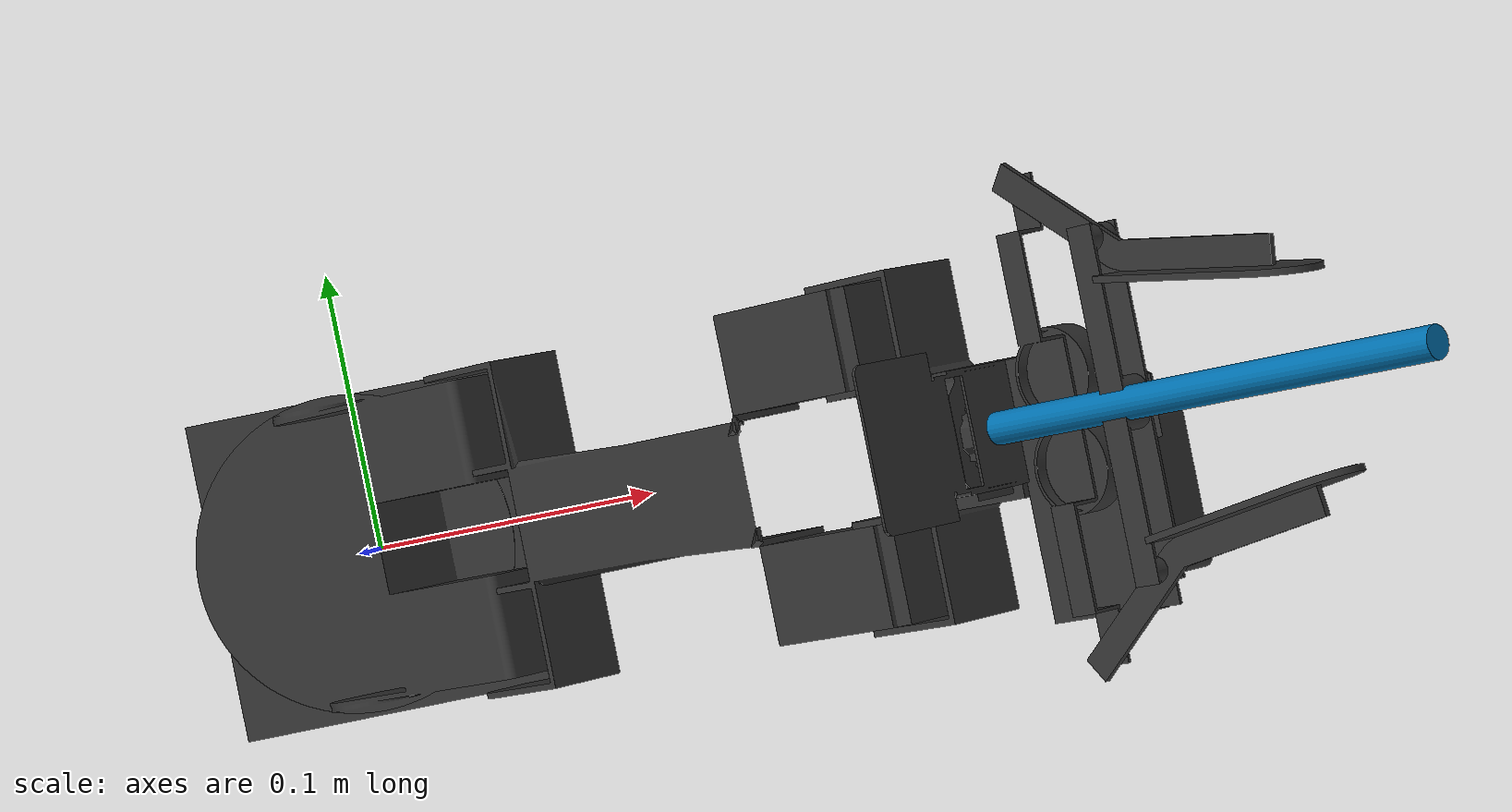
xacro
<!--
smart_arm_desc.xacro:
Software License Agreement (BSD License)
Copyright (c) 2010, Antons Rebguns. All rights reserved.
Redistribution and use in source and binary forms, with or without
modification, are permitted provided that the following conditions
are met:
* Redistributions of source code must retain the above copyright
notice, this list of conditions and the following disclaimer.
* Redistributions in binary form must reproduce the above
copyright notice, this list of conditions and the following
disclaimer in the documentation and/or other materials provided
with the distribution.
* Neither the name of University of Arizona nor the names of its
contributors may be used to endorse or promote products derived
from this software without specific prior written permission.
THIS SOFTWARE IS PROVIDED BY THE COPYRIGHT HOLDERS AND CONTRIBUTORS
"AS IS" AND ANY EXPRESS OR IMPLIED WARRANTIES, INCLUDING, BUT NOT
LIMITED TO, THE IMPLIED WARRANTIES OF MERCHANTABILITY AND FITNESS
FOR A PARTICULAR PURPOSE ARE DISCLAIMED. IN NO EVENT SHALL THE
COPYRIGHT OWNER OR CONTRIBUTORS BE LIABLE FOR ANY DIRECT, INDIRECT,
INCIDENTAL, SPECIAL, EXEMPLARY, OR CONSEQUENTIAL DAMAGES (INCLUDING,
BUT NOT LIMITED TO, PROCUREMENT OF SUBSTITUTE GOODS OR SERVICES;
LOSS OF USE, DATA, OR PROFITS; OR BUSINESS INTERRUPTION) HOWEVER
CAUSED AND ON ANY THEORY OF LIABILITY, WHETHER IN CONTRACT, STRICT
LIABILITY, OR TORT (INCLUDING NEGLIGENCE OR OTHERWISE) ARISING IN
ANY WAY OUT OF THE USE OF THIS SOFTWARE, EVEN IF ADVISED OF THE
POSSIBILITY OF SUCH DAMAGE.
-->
<?xml version="1.0"?>

<robot name="smart_arm"
    xmlns:sensor="http://playerstage.sourceforge.net/gazebo/xmlschema/#sensor"
    xmlns:controller="http://playerstage.sourceforge.net/gazebo/xmlschema/#controller"
    xmlns:interface="http://playerstage.sourceforge.net/gazebo/xmlschema/#interface">

    <!-- Included URDF Files -->
    <include filename="$(find smart_arm_desc)/smart_arm_desc.xacro" />
    <include filename="$(find smart_arm_desc)/effector_desc.xacro" />

    <link name="world_link">
    </link>

    <smart_arm parent="world_link">
        <origin xyz="0 0 0" rpy="0 0 0" />
    </smart_arm>
    <end_effector parent="arm_wrist_roll_link"/>
</robot>

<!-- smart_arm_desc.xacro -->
<robot
	name="smart_arm"
    xmlns:sensor="http://playerstage.sourceforge.net/gazebo/xmlschema/#sensor"
    xmlns:controller="http://playerstage.sourceforge.net/gazebo/xmlschema/#controller"
    xmlns:interface="http://playerstage.sourceforge.net/gazebo/xmlschema/#interface">

    <macro name="smart_arm" params="parent *origin">
        <!-- ****** JOINT DEFINITIONS ****** -->

        <!-- Arm's base joint -->
        <joint name="arm_base_joint" type="fixed">
            <insert_block name="origin" />
            <parent link="${parent}"/>
            <child link="arm_base_link"/>
        </joint>

        <!-- Shoulder pan joint -->
        <joint name="shoulder_pan_joint" type="revolute" >
            <origin xyz="-0.0075 0 0.025" rpy="0 0 0" />
            <parent link="arm_base_link" />
            <child link="arm_shoulder_pan_link"/>

            <axis xyz="0 0 1"/>
            <limit  lower="-1.22" upper="1.22" effort="300" velocity="1.17" />
            <safety_controller k_position="100" k_velocity="15.0" soft_lower_limit="${-1.22+0.1}" soft_upper_limit="${1.22-0.1}" />
            <dynamics damping="50" friction="1"/>
        </joint>

	<!-- Shoulder tilt joint -->
        <joint name="shoulder_pitch_joint" type="revolute">
            <origin xyz="${0.077/1.414} 0 ${0.040 + 0.077/1.414}" rpy="0 -0.7854 0" />
            <parent link="arm_shoulder_pan_link"/>
            <child link="arm_shoulder_pitch_link" />

            <axis xyz="0 -1 0"/>
            <limit  lower="-2.007" upper="2.007" effort="300" velocity="1.17" />
            <safety_controller k_position="100" k_velocity="15.0" soft_lower_limit="-2" soft_upper_limit="2" />
            <dynamics damping="50" friction="1"/>
        </joint>

        <!-- Elbow tilt joint -->
        <joint name="elbow_flex_joint" type="revolute">
            <origin xyz="${0.04 - 0.01 + 0.0015 + 0.105 + 0.055 - 0.01} 0 0" rpy="0 0 0" />
            <parent link="arm_shoulder_pitch_link"/>
            <child link="arm_elbow_flex_link" />

            <axis xyz="0 -1 0"/>
            <!-- From -113 to 108 degrees -->
            <limit  lower="-1.972222" upper="1.8849556" effort="300" velocity="1.17" />
            <dynamics damping="50" friction="1"/>
            <safety_controller k_position="100" k_velocity="15.0" soft_lower_limit="${-1.972222+0.1}" soft_upper_limit="${1.8849556-0.1}" />
        </joint>

        <!-- Wrist rotate joint -->
        <joint name="wrist_roll_joint" type="revolute">
            <origin xyz="${0.08 - 0.01} 0 ${0.05 - 0.0115 - 0.0155}" rpy="0 0 0" />
            <parent link="arm_elbow_flex_link"/>
            <child link="arm_wrist_roll_link" />

            <axis xyz="-1 0 0"/>
            <!-- From -150 to 150 degrees -->
            <limit  lower="-2.6179939" upper="2.6179939" effort="300" velocity="1.17" />
            <dynamics damping="50" friction="1"/>
            <safety_controller k_position="100" k_velocity="15.0" soft_lower_limit="${-2.6179939+0.1}" soft_upper_limit="${2.6179939-0.1}" />
        </joint>

        <!-- Right knuckle joint -->
        <joint name="claw_joint" type="revolute">
            <origin xyz="0.025 ${0.0125-0.014*2} -0.010" rpy="0 0 -1.5708" />
            <parent link="arm_wrist_roll_link"/>
            <child link="arm_right_finger_link" />

            <axis xyz="0 0 1"/>
            <!-- From -15 to 55 degrees -->
            <limit  lower="-0.2618" upper="0.9599" effort="300" velocity="1.17" />
            <dynamics damping="50" friction="1"/>
        </joint>

        <!-- Left knuckle joint -->
        <joint name="left_knuckle_joint" type="revolute">
            <origin xyz="0.025 0.0125 -0.010" rpy="0 0 1.5708" />
            <parent link="arm_wrist_roll_link"/>
            <child link="arm_left_finger_link" />

	    <mimic joint="claw_joint" multiplier="-1"/>
            <axis xyz="0 0 1"/>
            <!-- From -14 to 45 degrees -->
            <limit  lower="-0.9599" upper="0.2618" effort="300" velocity="1.17" />
            <dynamics damping="50" friction="1"/>
        </joint>

	<!-- Right finger joint -->
        <joint name="right_finger_joint" type="revolute">
            <origin xyz="0.058 0 0.007" rpy="0 0 1.5708" />
            <parent link="arm_right_finger_link"/>
            <child link="arm_right_gripper_link" />

            <axis xyz="0 0 1"/>
	    <mimic joint="claw_joint" multiplier="-1"/>
            <!-- From -15 to 55 degrees -->
            <limit  lower="-3.14" upper="3.14" effort="300" velocity="1.17" />
            <dynamics damping="50" friction="1"/>
        </joint>

	<!-- Left finger joint -->
        <joint name="left_finger_joint" type="revolute">
            <origin xyz="0.058 0 0.007" rpy="0 0 -1.5708" />
            <parent link="arm_left_finger_link"/>
            <child link="arm_left_gripper_link" />

            <axis xyz="0 0 1"/>
	    <mimic joint="claw_joint" multiplier="1"/>
            <!-- From -15 to 55 degrees -->
            <limit  lower="-3.14" upper="3.14" effort="300" velocity="1.17" />
            <dynamics damping="50" friction="1"/>
        </joint>

	<!-- Right connector joint -->
        <joint name="right_connector_joint" type="revolute">
            <origin xyz="0.049 -0.005 -0.009" rpy="0 0 -1.5708" />
            <parent link="arm_wrist_roll_link"/>
            <child link="arm_right_connector_link" />

            <axis xyz="0 0 1"/>
	    <mimic joint="claw_joint" multiplier="1"/>
            <!-- From -14 to 45 degrees -->
            <limit  lower="-0.2618" upper="0.9599" effort="300" velocity="1.17" />
            <dynamics damping="50" friction="1"/>
        </joint>

	<!-- Left connector joint -->
        <joint name="left_connector_joint" type="revolute">
            <origin xyz="0.049 0.005 -0.009" rpy="0 0 1.5708" />
            <parent link="arm_wrist_roll_link"/>
            <child link="arm_left_connector_link" />

            <axis xyz="0 0 1"/>
	    <mimic joint="claw_joint" multiplier="-1"/>
            <!-- From -14 to 45 degrees -->
            <limit  lower="-0.9599" upper="0.2618" effort="300" velocity="1.17" />
            <dynamics damping="50" friction="1"/>
        </joint>

        <!-- ****** LINK DEFINITIONS ****** -->

        <link name="arm_base_link">
            <inertial>
                <mass value="0.125" />
                <origin xyz="0 0 0" rpy="0 0 0" />
                <inertia ixx="1.0" ixy="0.0" ixz="0.0"
                         iyy="1.0" iyz="0.0"
                         izz="1.0" />
            </inertial>

            <visual>
                <origin xyz="0.0 0.0 0.0" rpy="0 0 0" />
                <geometry>
                    <mesh filename="package://smart_arm_desc/meshes/arm_base.stl"/>
                </geometry>
                <material name="matArm" />
            </visual>

            <collision>
                <origin xyz="0.0 0.0 0.0" rpy="0 0 0" />
                <geometry>
                    <mesh filename="package://smart_arm_desc/meshes/arm_base.stl"/>
                </geometry>
            </collision>
        </link>

	<link name="arm_shoulder_pan_link">
            <inertial>
                <mass value="0.405" />
                <origin xyz="0 0 0.0" rpy="0 0 0" />
                <inertia ixx="1.0" ixy="0.0" ixz="0.0"
                         iyy="1.0" iyz="0.0"
                         izz="1.0" />
            </inertial>

            <visual>
                <origin xyz="-0.0565 -0.0565 0" rpy="0 0 0" />
                <geometry>
                    <mesh filename="package://smart_arm_desc/meshes/arm_shoulder_pan.stl"/>
                </geometry>
                <material name="matArm" />
            </visual>

            <collision>
                <origin xyz="0.0565 0.0565 0" rpy="0 0 0" />
                <geometry>
                    <mesh filename="package://smart_arm_desc/meshes/arm_shoulder_pan.stl"/>
                </geometry>
            </collision>
        </link>

<link name="arm_shoulder_pitch_link">
            <inertial>
                <mass value="0.18" />
                <origin xyz="0.13999458 0 0.00064711" rpy="0 0 0" />
                <inertia ixx="1.0" ixy="0.0" ixz="0.0"
                         iyy="1.0" iyz="0.0"
                         izz="1.0" />
            </inertial>

            <visual>
                <origin xyz="0.0 0.0 0.0" rpy="0 0 0" />
                <geometry>
                    <mesh filename="package://smart_arm_desc/meshes/arm_shoulder_pitch.stl"/>
                </geometry>
                <material name="matArm" />
            </visual>

            <collision>
                <origin xyz="0.0 0.0 0.0" rpy="0 0 0" />
                <geometry>
                    <mesh filename="package://smart_arm_desc/meshes/arm_shoulder_pitch.stl"/>
                </geometry>
            </collision>
        </link>

        <link name="arm_elbow_flex_link">
            <inertial>
                <mass value="0.12" />
                <origin xyz="0.04463361 0 0.00720194" rpy="0 0 0" />
                <inertia ixx="1.0" ixy="0.0" ixz="0.0"
                         iyy="1.0" iyz="0.0"
                         izz="1.0" />
            </inertial>

            <visual>
                <origin xyz="0.0 0.0 0.0" rpy="0 0 0" />
                <geometry>
                    <mesh filename="package://smart_arm_desc/meshes/arm_elbow_flex.stl"/>
                </geometry>
                <material name="matArm" />
            </visual>

            <collision>
                <origin xyz="0.0 0.0 0.0" rpy="0 0 0" />
                <geometry>
                    <mesh filename="package://smart_arm_desc/meshes/arm_elbow_flex.stl"/>
                </geometry>
            </collision>
        </link>

        <link name="arm_wrist_roll_link">
            <inertial>
                <mass value="0.13" />
                <origin xyz="0.02539960 0 0" rpy="0 0 0" />
                <inertia ixx="1.0" ixy="0.0" ixz="0.0"
                         iyy="1.0" iyz="0.0"
                         izz="1.0" />
            </inertial>

            <visual>
                <origin xyz="0.0 -0.0615 -0.042" rpy="0 0 0" />
                <geometry>
                    <mesh filename="package://smart_arm_desc/meshes/arm_wrist.stl"/>
                </geometry>
                <material name="matArm" />
            </visual>

            <collision>
                <origin xyz="0.0 -0.0615 -0.042" rpy="0 0 0" />
                <geometry>
                    <mesh filename="package://smart_arm_desc/meshes/arm_wrist.stl"/>
                </geometry>
            </collision>
        </link>

        <link name="arm_right_finger_link">
            <inertial>
                <mass value="0.0225" />
                <origin xyz="0.03058625 -0.01804371 -0.00941599" rpy="0 0 0" />
                <inertia ixx="1.0" ixy="0.0" ixz="0.0"
                         iyy="1.0" iyz="0.0"
                         izz="1.0" />
            </inertial>

            <visual>
                <origin xyz="-0.014 -0.014 0.0" rpy="0 0 0" />
                <geometry>
                    <mesh filename="package://smart_arm_desc/meshes/arm_finger_link.stl"/>
                </geometry>
                <material name="matArm" />
            </visual>

            <collision>
                <origin xyz="-0.014 -0.014 0.0" rpy="0 0 0" />
                <geometry>
                    <mesh filename="package://smart_arm_desc/meshes/arm_finger_link.stl"/>
                </geometry>
            </collision>
        </link>

        <link name="arm_left_finger_link">
            <inertial>
                <mass value="0.0225" />
                <origin xyz="-0.014 -0.014 0.0" rpy="0 0 0" />
                <inertia ixx="1.0" ixy="0.0" ixz="0.0"
                         iyy="1.0" iyz="0.0"
                         izz="1.0" />
            </inertial>

            <visual>
                <origin xyz="-0.014 -0.014 0.0" rpy="0 0 0" />
                <geometry>
                    <mesh filename="package://smart_arm_desc/meshes/arm_finger_link.stl"/>
                </geometry>
                <material name="matArm" />
            </visual>

            <collision>
                <origin xyz="-0.014 -0.014 0.0" rpy="0 0 0" />
                <geometry>
                    <mesh filename="package://smart_arm_desc/meshes/arm_finger_link.stl"/>
                </geometry>
            </collision>
        </link>

	<link name="arm_right_gripper_link">
            <inertial>
                <mass value="0.0225" />
                <origin xyz="${-0.01*0.5-0.004*0.866} ${-0.005*0.866-0.004*0.5} -0.014" rpy="0 0 0.139" />
                <inertia ixx="1.0" ixy="0.0" ixz="0.0"
                         iyy="1.0" iyz="0.0"
                         izz="1.0" />
            </inertial>

            <visual>
                <origin xyz="${-0.01*0.5-0.004*0.866} ${-0.005*0.866-0.004*0.5} -0.014" rpy="0 0 0.139" />
                <geometry>
                    <mesh filename="package://smart_arm_desc/meshes/arm_gripper.stl"/>
                </geometry>
                <material name="matArm" />
            </visual>

            <collision>
                <origin xyz="${-0.01*0.5-0.004*0.866} ${-0.005*0.866-0.004*0.5} -0.014" rpy="0 0 0.139" />
                <geometry>
                    <mesh filename="package://smart_arm_desc/meshes/arm_gripper.stl"/>
                </geometry>
            </collision>
        </link>

<link name="arm_left_gripper_link">
            <inertial>
                <mass value="0.0225" />
                <origin xyz="${-0.01*0.5-0.004*0.866} ${0.005*0.866+0.004*0.5} 0.014" rpy="3.1415 -0 0.139" />
                <inertia ixx="1.0" ixy="0.0" ixz="0.0"
                         iyy="1.0" iyz="0.0"
                         izz="1.0" />
            </inertial>

            <visual>
                <origin xyz="${-0.01*0.5-0.004*0.866} ${0.005*0.866+0.004*0.5} 0.014" rpy="3.1415 0 -0.139" />
                <geometry>
                    <mesh filename="package://smart_arm_desc/meshes/arm_gripper.stl"/>
                </geometry>
                <material name="matArm" />
            </visual>

            <collision>
                <origin xyz="${-0.01*0.5-0.004*0.866} ${0.005*0.866+0.004*0.5} 0.014" rpy="3.1415 0 -0.139" />
                <geometry>
                    <mesh filename="package://smart_arm_desc/meshes/arm_gripper.stl"/>
                </geometry>
            </collision>
        </link>

<link name="arm_right_connector_link">
            <inertial>
                <mass value="0.0225" />
                <origin xyz="${-0.01*0.5-0.004*0.866} ${-0.005*0.866-0.004*0.5} 0.014" rpy="0 0 0" />
                <inertia ixx="1.0" ixy="0.0" ixz="0.0"
                         iyy="1.0" iyz="0.0"
                         izz="1.0" />
            </inertial>

            <visual>
                <origin xyz="-0.005 -0.005 0" rpy="0 0 0" />
                <geometry>
                    <mesh filename="package://smart_arm_desc/meshes/arm_connector.stl"/>
                </geometry>
                <material name="matArm" />
            </visual>

            <collision>
                <origin xyz="0.005 0.005 0" rpy="0 0 0" />
                <geometry>
                    <mesh filename="package://smart_arm_desc/meshes/arm_connector.stl"/>
                </geometry>
            </collision>
        </link>

<link name="arm_left_connector_link">
            <inertial>
                <mass value="0.0225" />
                <origin xyz="${-0.01*0.5-0.004*0.866} ${-0.005*0.866-0.004*0.5} 0.014" rpy="0 0 0" />
                <inertia ixx="1.0" ixy="0.0" ixz="0.0"
                         iyy="1.0" iyz="0.0"
                         izz="1.0" />
            </inertial>

            <visual>
                <origin xyz="-0.005 -0.005 0" rpy="0 0 0" />
                <geometry>
                    <mesh filename="package://smart_arm_desc/meshes/arm_connector.stl"/>
                </geometry>
                <material name="matArm" />
            </visual>

            <collision>
                <origin xyz="0.005 0.005 0" rpy="0 0 0" />
                <geometry>
                    <mesh filename="package://smart_arm_desc/meshes/arm_connector.stl"/>
                </geometry>
            </collision>
        </link>

        <!-- ****** TRANSMISSION DEFINITIONS ****** -->
        <transmission type="pr2_mechanism_model/SimpleTransmission" name="shoulder_pan_trans">
            <actuator name="shoulder_pan_motor" />
            <joint name="shoulder_pan_joint" />
            <mechanicalReduction>1.0</mechanicalReduction>
        </transmission>

        <transmission type="pr2_mechanism_model/SimpleTransmission" name="shoulder_pitch_trans">
            <actuator name="shoulder_pitch_motor" />
            <joint name="shoulder_pitch_joint" />
            <mechanicalReduction>1.0</mechanicalReduction>
        </transmission>

        <transmission type="pr2_mechanism_model/SimpleTransmission" name="elbow_flex_trans">
            <actuator name="elbow_flex_motor" />
            <joint name="elbow_flex_joint" />
            <mechanicalReduction>1.0</mechanicalReduction>
        </transmission>

        <transmission type="pr2_mechanism_model/SimpleTransmission" name="wrist_roll_trans">
            <actuator name="wrist_roll_motor" />
            <joint name="wrist_roll_joint" />
            <mechanicalReduction>1.0</mechanicalReduction>
        </transmission>

        <transmission type="pr2_mechanism_model/SimpleTransmission" name="right_finger_trans">
            <actuator name="right_finger_motor" />
            <joint name="claw_joint" />
            <mechanicalReduction>1.0</mechanicalReduction>
        </transmission>

        <!-- ****** MATERIAL DEFINITIONS ****** -->

       	<material name="matArm">
        	<color rgba="0.2 0.2 0.2 1.0"/>
    	</material>
    </macro>
</robot>

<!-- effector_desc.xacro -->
<robot name="smart_arm" xmlns:sensor="http://playerstage.sourceforge.net/gazebo/xmlschema/#sensor"
    xmlns:controller="http://playerstage.sourceforge.net/gazebo/xmlschema/#controller"
    xmlns:interface="http://playerstage.sourceforge.net/gazebo/xmlschema/#interface">

<macro name="end_effector" params="parent">

  <joint name="effector_base_joint" type="fixed">
    <parent link="${parent}"/>
    <child link="effector_link"/>
    <origin xyz="0 0 0" rpy="0 0 0"/>
  </joint>

  <link name="effector_link">
    <visual>
      <geometry>
        <cylinder length="0.165" radius="0.005"/>
      </geometry>
      <origin xyz="0.0825 0 0" rpy="0 1.57075 0"/>
    </visual>
  </link>

<joint name="effector_tip_joint" type="fixed">
    <parent link="effector_link"/>
    <child link="effector_tip_link"/>
    <origin xyz="0.165 0 0" rpy="0 0 0"/>
  </joint>

<link name = "effector_tip_link">
</link>
</macro>
</robot>
